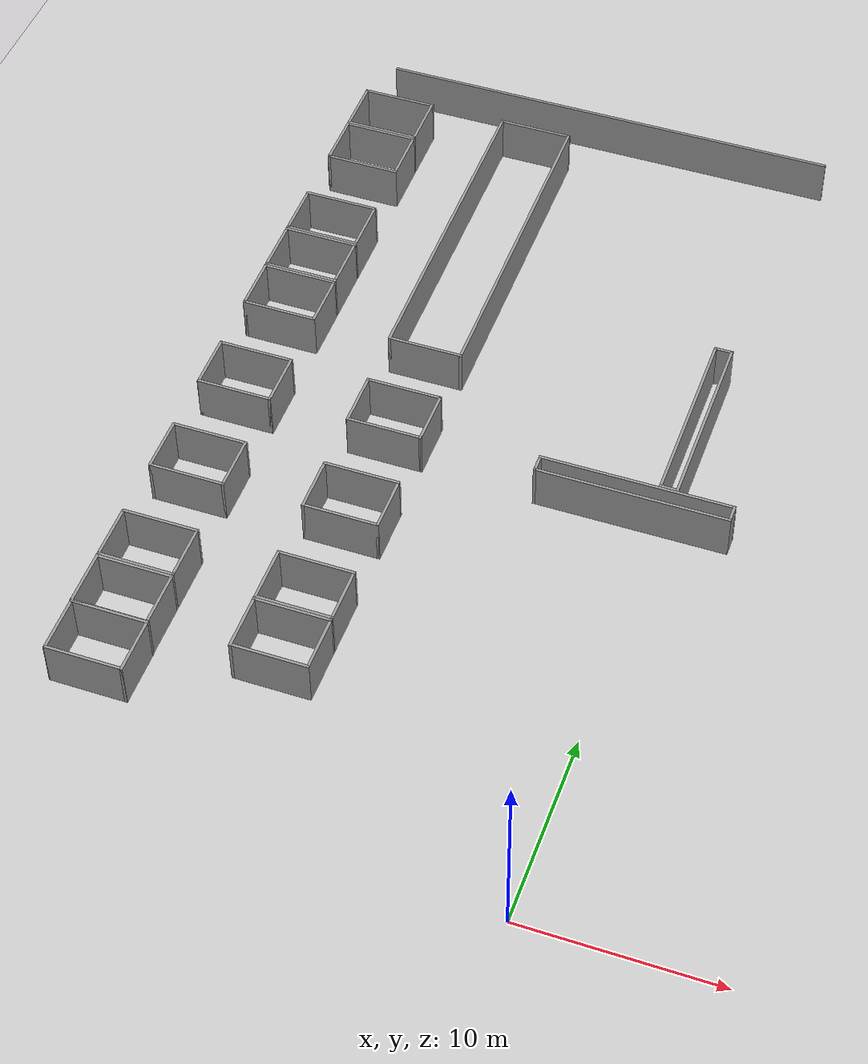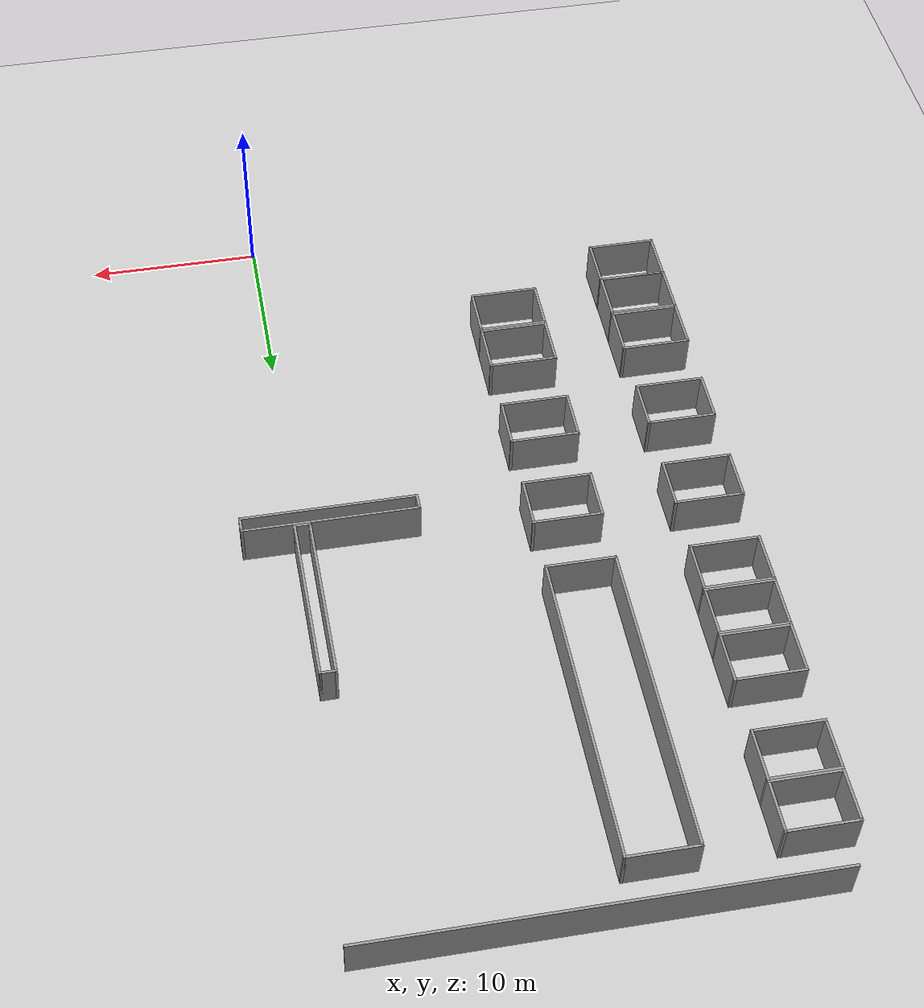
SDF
<sdf version="1.6">
 <world name="default">
  <model name="ground_plane">
   <static>1</static>
   <link name="link">
    <collision name="collision">
     <geometry><plane><normal>0 0 1</normal><size>105 105</size></plane></geometry>
     <surface>
      <contact><collide_bitmask>65535</collide_bitmask></contact>
      <friction><ode><mu>100</mu><mu2>50</mu2></ode></friction>
     </surface>
    </collision>
    <visual name="visual">
     <cast_shadows>0</cast_shadows>
     <geometry><plane><normal>0 0 1</normal><size>105 105</size></plane></geometry>
     <material>
      <script><uri>file://media/materials/scripts/gazebo.material</uri><name>Gazebo/Grey</name></script>
     </material>
    </visual>
   </link>
  </model>
  <model name="wall_25m_4">
   <pose>-10.9942 49.3463 0 0 -0 0</pose>
   <link name="Wall_28">
    <collision name="Wall_28_Collision">
     <geometry><box><size>25 0.15 2.5</size></box></geometry>
     <pose>0 0 1.25 0 -0 0</pose>
    </collision>
    <visual name="Wall_28_Visual">
     <pose>0 0 1.25 0 -0 0</pose>
     <geometry><box><size>25 0.15 2.5</size></box></geometry>
     <material>
      <script><uri>file://media/materials/scripts/gazebo.material</uri><name>Gazebo/Grey</name></script>
      <ambient>1 1 1 1</ambient>
     </material>
     <meta><layer>0</layer></meta>
    </visual>
   </link>
   <static>1</static>
  </model>
  <model name="base3x4_73">
   <pose>-22.4114 6.74221 0 0 -0 0</pose>
   <link name="Wall_18">
    <collision name="Wall_18_Collision">
     <geometry><box><size>3 0.15 2.5</size></box></geometry>
     <pose>0 0 1.25 0 -0 0</pose>
    </collision>
    <visual name="Wall_18_Visual">
     <pose>0 0 1.25 0 -0 0</pose>
     <geometry><box><size>3 0.15 2.5</size></box></geometry>
     <material>
      <script><uri>file://media/materials/scripts/gazebo.material</uri><name>Gazebo/Grey</name></script>
      <ambient>1 1 1 1</ambient>
     </material>
     <meta><layer>0</layer></meta>
    </visual>
    <pose>-1.925 -0 0 0 -0 -1.5708</pose>
   </link>
   <link name="Wall_19">
    <collision name="Wall_19_Collision">
     <geometry><box><size>4 0.15 2.5</size></box></geometry>
     <pose>0 0 1.25 0 -0 0</pose>
    </collision>
    <visual name="Wall_19_Visual">
     <pose>0 0 1.25 0 -0 0</pose>
     <geometry><box><size>4 0.15 2.5</size></box></geometry>
     <material>
      <script><uri>file://media/materials/scripts/gazebo.material</uri><name>Gazebo/Grey</name></script>
      <ambient>1 1 1 1</ambient>
     </material>
     <meta><layer>0</layer></meta>
    </visual>
    <pose>-0 -1.425 0 0 -0 0</pose>
   </link>
   <link name="Wall_20">
    <collision name="Wall_20_Collision">
     <geometry><box><size>3 0.15 2.5</size></box></geometry>
     <pose>0 0 1.25 0 -0 0</pose>
    </collision>
    <visual name="Wall_20_Visual">
     <pose>0 0 1.25 0 -0 0</pose>
     <geometry><box><size>3 0.15 2.5</size></box></geometry>
     <material>
      <script><uri>file://media/materials/scripts/gazebo.material</uri><name>Gazebo/Grey</name></script>
      <ambient>1 1 1 1</ambient>
     </material>
     <meta><layer>0</layer></meta>
    </visual>
    <pose>1.925 -0 0 0 -0 1.5708</pose>
   </link>
   <link name="Wall_21">
    <collision name="Wall_21_Collision">
     <geometry><box><size>4 0.15 2.5</size></box></geometry>
     <pose>0 0 1.25 0 -0 0</pose>
    </collision>
    <visual name="Wall_21_Visual">
     <pose>0 0 1.25 0 -0 0</pose>
     <geometry><box><size>4 0.15 2.5</size></box></geometry>
     <material>
      <script><uri>file://media/materials/scripts/gazebo.material</uri><name>Gazebo/Grey</name></script>
      <ambient>1 1 1 1</ambient>
     </material>
     <meta><layer>0</layer></meta>
    </visual>
    <pose>-0 1.425 0 0 -0 3.14159</pose>
   </link>
   <static>1</static>
  </model>
  <model name="base3x4_50">
   <pose>-22.4338 9.61846 0 0 -0 0</pose>
   <link name="Wall_18">
    <collision name="Wall_18_Collision">
     <geometry><box><size>3 0.15 2.5</size></box></geometry>
     <pose>0 0 1.25 0 -0 0</pose>
    </collision>
    <visual name="Wall_18_Visual">
     <pose>0 0 1.25 0 -0 0</pose>
     <geometry><box><size>3 0.15 2.5</size></box></geometry>
     <material>
      <script><uri>file://media/materials/scripts/gazebo.material</uri><name>Gazebo/Grey</name></script>
      <ambient>1 1 1 1</ambient>
     </material>
     <meta><layer>0</layer></meta>
    </visual>
    <pose>-1.925 -0 0 0 -0 -1.5708</pose>
   </link>
   <link name="Wall_19">
    <collision name="Wall_19_Collision">
     <geometry><box><size>4 0.15 2.5</size></box></geometry>
     <pose>0 0 1.25 0 -0 0</pose>
    </collision>
    <visual name="Wall_19_Visual">
     <pose>0 0 1.25 0 -0 0</pose>
     <geometry><box><size>4 0.15 2.5</size></box></geometry>
     <material>
      <script><uri>file://media/materials/scripts/gazebo.material</uri><name>Gazebo/Grey</name></script>
      <ambient>1 1 1 1</ambient>
     </material>
     <meta><layer>0</layer></meta>
    </visual>
    <pose>-0 -1.425 0 0 -0 0</pose>
   </link>
   <link name="Wall_20">
    <collision name="Wall_20_Collision">
     <geometry><box><size>3 0.15 2.5</size></box></geometry>
     <pose>0 0 1.25 0 -0 0</pose>
    </collision>
    <visual name="Wall_20_Visual">
     <pose>0 0 1.25 0 -0 0</pose>
     <geometry><box><size>3 0.15 2.5</size></box></geometry>
     <material>
      <script><uri>file://media/materials/scripts/gazebo.material</uri><name>Gazebo/Grey</name></script>
      <ambient>1 1 1 1</ambient>
     </material>
     <meta><layer>0</layer></meta>
    </visual>
    <pose>1.925 -0 0 0 -0 1.5708</pose>
   </link>
   <link name="Wall_21">
    <collision name="Wall_21_Collision">
     <geometry><box><size>4 0.15 2.5</size></box></geometry>
     <pose>0 0 1.25 0 -0 0</pose>
    </collision>
    <visual name="Wall_21_Visual">
     <pose>0 0 1.25 0 -0 0</pose>
     <geometry><box><size>4 0.15 2.5</size></box></geometry>
     <material>
      <script><uri>file://media/materials/scripts/gazebo.material</uri><name>Gazebo/Grey</name></script>
      <ambient>1 1 1 1</ambient>
     </material>
     <meta><layer>0</layer></meta>
    </visual>
    <pose>-0 1.425 0 0 -0 3.14159</pose>
   </link>
   <static>1</static>
  </model>
  <model name="base3x4_66">
   <pose>-14.4193 9.67951 0 0 -0 0</pose>
   <link name="Wall_18">
    <collision name="Wall_18_Collision">
     <geometry><box><size>3 0.15 2.5</size></box></geometry>
     <pose>0 0 1.25 0 -0 0</pose>
    </collision>
    <visual name="Wall_18_Visual">
     <pose>0 0 1.25 0 -0 0</pose>
     <geometry><box><size>3 0.15 2.5</size></box></geometry>
     <material>
      <script><uri>file://media/materials/scripts/gazebo.material</uri><name>Gazebo/Grey</name></script>
      <ambient>1 1 1 1</ambient>
     </material>
     <meta><layer>0</layer></meta>
    </visual>
    <pose>-1.925 -0 0 0 -0 -1.5708</pose>
   </link>
   <link name="Wall_19">
    <collision name="Wall_19_Collision">
     <geometry><box><size>4 0.15 2.5</size></box></geometry>
     <pose>0 0 1.25 0 -0 0</pose>
    </collision>
    <visual name="Wall_19_Visual">
     <pose>0 0 1.25 0 -0 0</pose>
     <geometry><box><size>4 0.15 2.5</size></box></geometry>
     <material>
      <script><uri>file://media/materials/scripts/gazebo.material</uri><name>Gazebo/Grey</name></script>
      <ambient>1 1 1 1</ambient>
     </material>
     <meta><layer>0</layer></meta>
    </visual>
    <pose>-0 -1.425 0 0 -0 0</pose>
   </link>
   <link name="Wall_20">
    <collision name="Wall_20_Collision">
     <geometry><box><size>3 0.15 2.5</size></box></geometry>
     <pose>0 0 1.25 0 -0 0</pose>
    </collision>
    <visual name="Wall_20_Visual">
     <pose>0 0 1.25 0 -0 0</pose>
     <geometry><box><size>3 0.15 2.5</size></box></geometry>
     <material>
      <script><uri>file://media/materials/scripts/gazebo.material</uri><name>Gazebo/Grey</name></script>
      <ambient>1 1 1 1</ambient>
     </material>
     <meta><layer>0</layer></meta>
    </visual>
    <pose>1.925 -0 0 0 -0 1.5708</pose>
   </link>
   <link name="Wall_21">
    <collision name="Wall_21_Collision">
     <geometry><box><size>4 0.15 2.5</size></box></geometry>
     <pose>0 0 1.25 0 -0 0</pose>
    </collision>
    <visual name="Wall_21_Visual">
     <pose>0 0 1.25 0 -0 0</pose>
     <geometry><box><size>4 0.15 2.5</size></box></geometry>
     <material>
      <script><uri>file://media/materials/scripts/gazebo.material</uri><name>Gazebo/Grey</name></script>
      <ambient>1 1 1 1</ambient>
     </material>
     <meta><layer>0</layer></meta>
    </visual>
    <pose>-0 1.425 0 0 -0 3.14159</pose>
   </link>
   <static>1</static>
  </model>
  <model name="base3x4_11">
   <pose>-14.4193 12.679 0 0 -0 0</pose>
   <link name="Wall_18">
    <collision name="Wall_18_Collision">
     <geometry><box><size>3 0.15 2.5</size></box></geometry>
     <pose>0 0 1.25 0 -0 0</pose>
    </collision>
    <visual name="Wall_18_Visual">
     <pose>0 0 1.25 0 -0 0</pose>
     <geometry><box><size>3 0.15 2.5</size></box></geometry>
     <material>
      <script><uri>file://media/materials/scripts/gazebo.material</uri><name>Gazebo/Grey</name></script>
      <ambient>1 1 1 1</ambient>
     </material>
     <meta><layer>0</layer></meta>
    </visual>
    <pose>-1.925 -0 0 0 -0 -1.5708</pose>
   </link>
   <link name="Wall_19">
    <collision name="Wall_19_Collision">
     <geometry><box><size>4 0.15 2.5</size></box></geometry>
     <pose>0 0 1.25 0 -0 0</pose>
    </collision>
    <visual name="Wall_19_Visual">
     <pose>0 0 1.25 0 -0 0</pose>
     <geometry><box><size>4 0.15 2.5</size></box></geometry>
     <material>
      <script><uri>file://media/materials/scripts/gazebo.material</uri><name>Gazebo/Grey</name></script>
      <ambient>1 1 1 1</ambient>
     </material>
     <meta><layer>0</layer></meta>
    </visual>
    <pose>-0 -1.425 0 0 -0 0</pose>
   </link>
   <link name="Wall_20">
    <collision name="Wall_20_Collision">
     <geometry><box><size>3 0.15 2.5</size></box></geometry>
     <pose>0 0 1.25 0 -0 0</pose>
    </collision>
    <visual name="Wall_20_Visual">
     <pose>0 0 1.25 0 -0 0</pose>
     <geometry><box><size>3 0.15 2.5</size></box></geometry>
     <material>
      <script><uri>file://media/materials/scripts/gazebo.material</uri><name>Gazebo/Grey</name></script>
      <ambient>1 1 1 1</ambient>
     </material>
     <meta><layer>0</layer></meta>
    </visual>
    <pose>1.925 -0 0 0 -0 1.5708</pose>
   </link>
   <link name="Wall_21">
    <collision name="Wall_21_Collision">
     <geometry><box><size>4 0.15 2.5</size></box></geometry>
     <pose>0 0 1.25 0 -0 0</pose>
    </collision>
    <visual name="Wall_21_Visual">
     <pose>0 0 1.25 0 -0 0</pose>
     <geometry><box><size>4 0.15 2.5</size></box></geometry>
     <material>
      <script><uri>file://media/materials/scripts/gazebo.material</uri><name>Gazebo/Grey</name></script>
      <ambient>1 1 1 1</ambient>
     </material>
     <meta><layer>0</layer></meta>
    </visual>
    <pose>-0 1.425 0 0 -0 3.14159</pose>
   </link>
   <static>1</static>
  </model>
  <model name="base3x4_16">
   <pose>-22.4359 12.6153 0 0 -0 0</pose>
   <link name="Wall_18">
    <collision name="Wall_18_Collision">
     <geometry><box><size>3 0.15 2.5</size></box></geometry>
     <pose>0 0 1.25 0 -0 0</pose>
    </collision>
    <visual name="Wall_18_Visual">
     <pose>0 0 1.25 0 -0 0</pose>
     <geometry><box><size>3 0.15 2.5</size></box></geometry>
     <material>
      <script><uri>file://media/materials/scripts/gazebo.material</uri><name>Gazebo/Grey</name></script>
      <ambient>1 1 1 1</ambient>
     </material>
     <meta><layer>0</layer></meta>
    </visual>
    <pose>-1.925 -0 0 0 -0 -1.5708</pose>
   </link>
   <link name="Wall_19">
    <collision name="Wall_19_Collision">
     <geometry><box><size>4 0.15 2.5</size></box></geometry>
     <pose>0 0 1.25 0 -0 0</pose>
    </collision>
    <visual name="Wall_19_Visual">
     <pose>0 0 1.25 0 -0 0</pose>
     <geometry><box><size>4 0.15 2.5</size></box></geometry>
     <material>
      <script><uri>file://media/materials/scripts/gazebo.material</uri><name>Gazebo/Grey</name></script>
      <ambient>1 1 1 1</ambient>
     </material>
     <meta><layer>0</layer></meta>
    </visual>
    <pose>-0 -1.425 0 0 -0 0</pose>
   </link>
   <link name="Wall_20">
    <collision name="Wall_20_Collision">
     <geometry><box><size>3 0.15 2.5</size></box></geometry>
     <pose>0 0 1.25 0 -0 0</pose>
    </collision>
    <visual name="Wall_20_Visual">
     <pose>0 0 1.25 0 -0 0</pose>
     <geometry><box><size>3 0.15 2.5</size></box></geometry>
     <material>
      <script><uri>file://media/materials/scripts/gazebo.material</uri><name>Gazebo/Grey</name></script>
      <ambient>1 1 1 1</ambient>
     </material>
     <meta><layer>0</layer></meta>
    </visual>
    <pose>1.925 -0 0 0 -0 1.5708</pose>
   </link>
   <link name="Wall_21">
    <collision name="Wall_21_Collision">
     <geometry><box><size>4 0.15 2.5</size></box></geometry>
     <pose>0 0 1.25 0 -0 0</pose>
    </collision>
    <visual name="Wall_21_Visual">
     <pose>0 0 1.25 0 -0 0</pose>
     <geometry><box><size>4 0.15 2.5</size></box></geometry>
     <material>
      <script><uri>file://media/materials/scripts/gazebo.material</uri><name>Gazebo/Grey</name></script>
      <ambient>1 1 1 1</ambient>
     </material>
     <meta><layer>0</layer></meta>
    </visual>
    <pose>-0 1.425 0 0 -0 3.14159</pose>
   </link>
   <static>1</static>
  </model>
  <model name="base3x4_77">
   <pose>-14.4153 18.6617 0 0 -0 0</pose>
   <link name="Wall_18">
    <collision name="Wall_18_Collision">
     <geometry><box><size>3 0.15 2.5</size></box></geometry>
     <pose>0 0 1.25 0 -0 0</pose>
    </collision>
    <visual name="Wall_18_Visual">
     <pose>0 0 1.25 0 -0 0</pose>
     <geometry><box><size>3 0.15 2.5</size></box></geometry>
     <material>
      <script><uri>file://media/materials/scripts/gazebo.material</uri><name>Gazebo/Grey</name></script>
      <ambient>1 1 1 1</ambient>
     </material>
     <meta><layer>0</layer></meta>
    </visual>
    <pose>-1.925 -0 0 0 -0 -1.5708</pose>
   </link>
   <link name="Wall_19">
    <collision name="Wall_19_Collision">
     <geometry><box><size>4 0.15 2.5</size></box></geometry>
     <pose>0 0 1.25 0 -0 0</pose>
    </collision>
    <visual name="Wall_19_Visual">
     <pose>0 0 1.25 0 -0 0</pose>
     <geometry><box><size>4 0.15 2.5</size></box></geometry>
     <material>
      <script><uri>file://media/materials/scripts/gazebo.material</uri><name>Gazebo/Grey</name></script>
      <ambient>1 1 1 1</ambient>
     </material>
     <meta><layer>0</layer></meta>
    </visual>
    <pose>-0 -1.425 0 0 -0 0</pose>
   </link>
   <link name="Wall_20">
    <collision name="Wall_20_Collision">
     <geometry><box><size>3 0.15 2.5</size></box></geometry>
     <pose>0 0 1.25 0 -0 0</pose>
    </collision>
    <visual name="Wall_20_Visual">
     <pose>0 0 1.25 0 -0 0</pose>
     <geometry><box><size>3 0.15 2.5</size></box></geometry>
     <material>
      <script><uri>file://media/materials/scripts/gazebo.material</uri><name>Gazebo/Grey</name></script>
      <ambient>1 1 1 1</ambient>
     </material>
     <meta><layer>0</layer></meta>
    </visual>
    <pose>1.925 -0 0 0 -0 1.5708</pose>
   </link>
   <link name="Wall_21">
    <collision name="Wall_21_Collision">
     <geometry><box><size>4 0.15 2.5</size></box></geometry>
     <pose>0 0 1.25 0 -0 0</pose>
    </collision>
    <visual name="Wall_21_Visual">
     <pose>0 0 1.25 0 -0 0</pose>
     <geometry><box><size>4 0.15 2.5</size></box></geometry>
     <material>
      <script><uri>file://media/materials/scripts/gazebo.material</uri><name>Gazebo/Grey</name></script>
      <ambient>1 1 1 1</ambient>
     </material>
     <meta><layer>0</layer></meta>
    </visual>
    <pose>-0 1.425 0 0 -0 3.14159</pose>
   </link>
   <static>1</static>
  </model>
  <model name="base3x4_82">
   <pose>-22.4351 18.5982 0 0 -0 0</pose>
   <link name="Wall_18">
    <collision name="Wall_18_Collision">
     <geometry><box><size>3 0.15 2.5</size></box></geometry>
     <pose>0 0 1.25 0 -0 0</pose>
    </collision>
    <visual name="Wall_18_Visual">
     <pose>0 0 1.25 0 -0 0</pose>
     <geometry><box><size>3 0.15 2.5</size></box></geometry>
     <material>
      <script><uri>file://media/materials/scripts/gazebo.material</uri><name>Gazebo/Grey</name></script>
      <ambient>1 1 1 1</ambient>
     </material>
     <meta><layer>0</layer></meta>
    </visual>
    <pose>-1.925 -0 0 0 -0 -1.5708</pose>
   </link>
   <link name="Wall_19">
    <collision name="Wall_19_Collision">
     <geometry><box><size>4 0.15 2.5</size></box></geometry>
     <pose>0 0 1.25 0 -0 0</pose>
    </collision>
    <visual name="Wall_19_Visual">
     <pose>0 0 1.25 0 -0 0</pose>
     <geometry><box><size>4 0.15 2.5</size></box></geometry>
     <material>
      <script><uri>file://media/materials/scripts/gazebo.material</uri><name>Gazebo/Grey</name></script>
      <ambient>1 1 1 1</ambient>
     </material>
     <meta><layer>0</layer></meta>
    </visual>
    <pose>-0 -1.425 0 0 -0 0</pose>
   </link>
   <link name="Wall_20">
    <collision name="Wall_20_Collision">
     <geometry><box><size>3 0.15 2.5</size></box></geometry>
     <pose>0 0 1.25 0 -0 0</pose>
    </collision>
    <visual name="Wall_20_Visual">
     <pose>0 0 1.25 0 -0 0</pose>
     <geometry><box><size>3 0.15 2.5</size></box></geometry>
     <material>
      <script><uri>file://media/materials/scripts/gazebo.material</uri><name>Gazebo/Grey</name></script>
      <ambient>1 1 1 1</ambient>
     </material>
     <meta><layer>0</layer></meta>
    </visual>
    <pose>1.925 -0 0 0 -0 1.5708</pose>
   </link>
   <link name="Wall_21">
    <collision name="Wall_21_Collision">
     <geometry><box><size>4 0.15 2.5</size></box></geometry>
     <pose>0 0 1.25 0 -0 0</pose>
    </collision>
    <visual name="Wall_21_Visual">
     <pose>0 0 1.25 0 -0 0</pose>
     <geometry><box><size>4 0.15 2.5</size></box></geometry>
     <material>
      <script><uri>file://media/materials/scripts/gazebo.material</uri><name>Gazebo/Grey</name></script>
      <ambient>1 1 1 1</ambient>
     </material>
     <meta><layer>0</layer></meta>
    </visual>
    <pose>-0 1.425 0 0 -0 3.14159</pose>
   </link>
   <static>1</static>
  </model>
  <model name="base18x4_4">
   <pose>-14.4191 38.0948 0 0 -0 0</pose>
   <link name="Wall_6">
    <collision name="Wall_6_Collision">
     <geometry><box><size>18 0.15 2.5</size></box></geometry>
     <pose>0 0 1.25 0 -0 0</pose>
    </collision>
    <visual name="Wall_6_Visual">
     <pose>0 0 1.25 0 -0 0</pose>
     <geometry><box><size>18 0.15 2.5</size></box></geometry>
     <material>
      <script><uri>file://media/materials/scripts/gazebo.material</uri><name>Gazebo/Grey</name></script>
      <ambient>1 1 1 1</ambient>
     </material>
     <meta><layer>0</layer></meta>
    </visual>
    <pose>-1.925 0 0 0 -0 -1.5708</pose>
   </link>
   <link name="Wall_7">
    <collision name="Wall_7_Collision">
     <geometry><box><size>4 0.15 2.5</size></box></geometry>
     <pose>0 0 1.25 0 -0 0</pose>
    </collision>
    <visual name="Wall_7_Visual">
     <pose>0 0 1.25 0 -0 0</pose>
     <geometry><box><size>4 0.15 2.5</size></box></geometry>
     <material>
      <script><uri>file://media/materials/scripts/gazebo.material</uri><name>Gazebo/Grey</name></script>
      <ambient>1 1 1 1</ambient>
     </material>
     <meta><layer>0</layer></meta>
    </visual>
    <pose>0 -8.925 0 0 -0 0</pose>
   </link>
   <link name="Wall_8">
    <collision name="Wall_8_Collision">
     <geometry><box><size>18 0.15 2.5</size></box></geometry>
     <pose>0 0 1.25 0 -0 0</pose>
    </collision>
    <visual name="Wall_8_Visual">
     <pose>0 0 1.25 0 -0 0</pose>
     <geometry><box><size>18 0.15 2.5</size></box></geometry>
     <material>
      <script><uri>file://media/materials/scripts/gazebo.material</uri><name>Gazebo/Grey</name></script>
      <ambient>1 1 1 1</ambient>
     </material>
     <meta><layer>0</layer></meta>
    </visual>
    <pose>1.925 0 0 0 -0 1.5708</pose>
   </link>
   <link name="Wall_9">
    <collision name="Wall_9_Collision">
     <geometry><box><size>4 0.15 2.5</size></box></geometry>
     <pose>0 0 1.25 0 -0 0</pose>
    </collision>
    <visual name="Wall_9_Visual">
     <pose>0 0 1.25 0 -0 0</pose>
     <geometry><box><size>4 0.15 2.5</size></box></geometry>
     <material>
      <script><uri>file://media/materials/scripts/gazebo.material</uri><name>Gazebo/Grey</name></script>
      <ambient>1 1 1 1</ambient>
     </material>
     <meta><layer>0</layer></meta>
    </visual>
    <pose>0 8.925 0 0 -0 3.14159</pose>
   </link>
   <static>1</static>
  </model>
  <model name="base3x4_57">
   <pose>-14.4138 24.637 0 0 -0 0</pose>
   <link name="Wall_18">
    <collision name="Wall_18_Collision">
     <geometry><box><size>3 0.15 2.5</size></box></geometry>
     <pose>0 0 1.25 0 -0 0</pose>
    </collision>
    <visual name="Wall_18_Visual">
     <pose>0 0 1.25 0 -0 0</pose>
     <geometry><box><size>3 0.15 2.5</size></box></geometry>
     <material>
      <script><uri>file://media/materials/scripts/gazebo.material</uri><name>Gazebo/Grey</name></script>
      <ambient>1 1 1 1</ambient>
     </material>
     <meta><layer>0</layer></meta>
    </visual>
    <pose>-1.925 -0 0 0 -0 -1.5708</pose>
   </link>
   <link name="Wall_19">
    <collision name="Wall_19_Collision">
     <geometry><box><size>4 0.15 2.5</size></box></geometry>
     <pose>0 0 1.25 0 -0 0</pose>
    </collision>
    <visual name="Wall_19_Visual">
     <pose>0 0 1.25 0 -0 0</pose>
     <geometry><box><size>4 0.15 2.5</size></box></geometry>
     <material>
      <script><uri>file://media/materials/scripts/gazebo.material</uri><name>Gazebo/Grey</name></script>
      <ambient>1 1 1 1</ambient>
     </material>
     <meta><layer>0</layer></meta>
    </visual>
    <pose>-0 -1.425 0 0 -0 0</pose>
   </link>
   <link name="Wall_20">
    <collision name="Wall_20_Collision">
     <geometry><box><size>3 0.15 2.5</size></box></geometry>
     <pose>0 0 1.25 0 -0 0</pose>
    </collision>
    <visual name="Wall_20_Visual">
     <pose>0 0 1.25 0 -0 0</pose>
     <geometry><box><size>3 0.15 2.5</size></box></geometry>
     <material>
      <script><uri>file://media/materials/scripts/gazebo.material</uri><name>Gazebo/Grey</name></script>
      <ambient>1 1 1 1</ambient>
     </material>
     <meta><layer>0</layer></meta>
    </visual>
    <pose>1.925 -0 0 0 -0 1.5708</pose>
   </link>
   <link name="Wall_21">
    <collision name="Wall_21_Collision">
     <geometry><box><size>4 0.15 2.5</size></box></geometry>
     <pose>0 0 1.25 0 -0 0</pose>
    </collision>
    <visual name="Wall_21_Visual">
     <pose>0 0 1.25 0 -0 0</pose>
     <geometry><box><size>4 0.15 2.5</size></box></geometry>
     <material>
      <script><uri>file://media/materials/scripts/gazebo.material</uri><name>Gazebo/Grey</name></script>
      <ambient>1 1 1 1</ambient>
     </material>
     <meta><layer>0</layer></meta>
    </visual>
    <pose>-0 1.425 0 0 -0 3.14159</pose>
   </link>
   <static>1</static>
  </model>
  <model name="base3x4_80">
   <pose>-22.4387 24.5873 0 0 -0 0</pose>
   <link name="Wall_18">
    <collision name="Wall_18_Collision">
     <geometry><box><size>3 0.15 2.5</size></box></geometry>
     <pose>0 0 1.25 0 -0 0</pose>
    </collision>
    <visual name="Wall_18_Visual">
     <pose>0 0 1.25 0 -0 0</pose>
     <geometry><box><size>3 0.15 2.5</size></box></geometry>
     <material>
      <script><uri>file://media/materials/scripts/gazebo.material</uri><name>Gazebo/Grey</name></script>
      <ambient>1 1 1 1</ambient>
     </material>
     <meta><layer>0</layer></meta>
    </visual>
    <pose>-1.925 -0 0 0 -0 -1.5708</pose>
   </link>
   <link name="Wall_19">
    <collision name="Wall_19_Collision">
     <geometry><box><size>4 0.15 2.5</size></box></geometry>
     <pose>0 0 1.25 0 -0 0</pose>
    </collision>
    <visual name="Wall_19_Visual">
     <pose>0 0 1.25 0 -0 0</pose>
     <geometry><box><size>4 0.15 2.5</size></box></geometry>
     <material>
      <script><uri>file://media/materials/scripts/gazebo.material</uri><name>Gazebo/Grey</name></script>
      <ambient>1 1 1 1</ambient>
     </material>
     <meta><layer>0</layer></meta>
    </visual>
    <pose>-0 -1.425 0 0 -0 0</pose>
   </link>
   <link name="Wall_20">
    <collision name="Wall_20_Collision">
     <geometry><box><size>3 0.15 2.5</size></box></geometry>
     <pose>0 0 1.25 0 -0 0</pose>
    </collision>
    <visual name="Wall_20_Visual">
     <pose>0 0 1.25 0 -0 0</pose>
     <geometry><box><size>3 0.15 2.5</size></box></geometry>
     <material>
      <script><uri>file://media/materials/scripts/gazebo.material</uri><name>Gazebo/Grey</name></script>
      <ambient>1 1 1 1</ambient>
     </material>
     <meta><layer>0</layer></meta>
    </visual>
    <pose>1.925 -0 0 0 -0 1.5708</pose>
   </link>
   <link name="Wall_21">
    <collision name="Wall_21_Collision">
     <geometry><box><size>4 0.15 2.5</size></box></geometry>
     <pose>0 0 1.25 0 -0 0</pose>
    </collision>
    <visual name="Wall_21_Visual">
     <pose>0 0 1.25 0 -0 0</pose>
     <geometry><box><size>4 0.15 2.5</size></box></geometry>
     <material>
      <script><uri>file://media/materials/scripts/gazebo.material</uri><name>Gazebo/Grey</name></script>
      <ambient>1 1 1 1</ambient>
     </material>
     <meta><layer>0</layer></meta>
    </visual>
    <pose>-0 1.425 0 0 -0 3.14159</pose>
   </link>
   <static>1</static>
  </model>
  <model name="base3x4_89">
   <pose>-22.4372 30.571 0 0 -0 0</pose>
   <link name="Wall_18">
    <collision name="Wall_18_Collision">
     <geometry><box><size>3 0.15 2.5</size></box></geometry>
     <pose>0 0 1.25 0 -0 0</pose>
    </collision>
    <visual name="Wall_18_Visual">
     <pose>0 0 1.25 0 -0 0</pose>
     <geometry><box><size>3 0.15 2.5</size></box></geometry>
     <material>
      <script><uri>file://media/materials/scripts/gazebo.material</uri><name>Gazebo/Grey</name></script>
      <ambient>1 1 1 1</ambient>
     </material>
     <meta><layer>0</layer></meta>
    </visual>
    <pose>-1.925 -0 0 0 -0 -1.5708</pose>
   </link>
   <link name="Wall_19">
    <collision name="Wall_19_Collision">
     <geometry><box><size>4 0.15 2.5</size></box></geometry>
     <pose>0 0 1.25 0 -0 0</pose>
    </collision>
    <visual name="Wall_19_Visual">
     <pose>0 0 1.25 0 -0 0</pose>
     <geometry><box><size>4 0.15 2.5</size></box></geometry>
     <material>
      <script><uri>file://media/materials/scripts/gazebo.material</uri><name>Gazebo/Grey</name></script>
      <ambient>1 1 1 1</ambient>
     </material>
     <meta><layer>0</layer></meta>
    </visual>
    <pose>-0 -1.425 0 0 -0 0</pose>
   </link>
   <link name="Wall_20">
    <collision name="Wall_20_Collision">
     <geometry><box><size>3 0.15 2.5</size></box></geometry>
     <pose>0 0 1.25 0 -0 0</pose>
    </collision>
    <visual name="Wall_20_Visual">
     <pose>0 0 1.25 0 -0 0</pose>
     <geometry><box><size>3 0.15 2.5</size></box></geometry>
     <material>
      <script><uri>file://media/materials/scripts/gazebo.material</uri><name>Gazebo/Grey</name></script>
      <ambient>1 1 1 1</ambient>
     </material>
     <meta><layer>0</layer></meta>
    </visual>
    <pose>1.925 -0 0 0 -0 1.5708</pose>
   </link>
   <link name="Wall_21">
    <collision name="Wall_21_Collision">
     <geometry><box><size>4 0.15 2.5</size></box></geometry>
     <pose>0 0 1.25 0 -0 0</pose>
    </collision>
    <visual name="Wall_21_Visual">
     <pose>0 0 1.25 0 -0 0</pose>
     <geometry><box><size>4 0.15 2.5</size></box></geometry>
     <material>
      <script><uri>file://media/materials/scripts/gazebo.material</uri><name>Gazebo/Grey</name></script>
      <ambient>1 1 1 1</ambient>
     </material>
     <meta><layer>0</layer></meta>
    </visual>
    <pose>-0 1.425 0 0 -0 3.14159</pose>
   </link>
   <static>1</static>
  </model>
  <model name="base3x4_90">
   <pose>-22.4383 33.565 0 0 -0 0</pose>
   <link name="Wall_18">
    <collision name="Wall_18_Collision">
     <geometry><box><size>3 0.15 2.5</size></box></geometry>
     <pose>0 0 1.25 0 -0 0</pose>
    </collision>
    <visual name="Wall_18_Visual">
     <pose>0 0 1.25 0 -0 0</pose>
     <geometry><box><size>3 0.15 2.5</size></box></geometry>
     <material>
      <script><uri>file://media/materials/scripts/gazebo.material</uri><name>Gazebo/Grey</name></script>
      <ambient>1 1 1 1</ambient>
     </material>
     <meta><layer>0</layer></meta>
    </visual>
    <pose>-1.925 -0 0 0 -0 -1.5708</pose>
   </link>
   <link name="Wall_19">
    <collision name="Wall_19_Collision">
     <geometry><box><size>4 0.15 2.5</size></box></geometry>
     <pose>0 0 1.25 0 -0 0</pose>
    </collision>
    <visual name="Wall_19_Visual">
     <pose>0 0 1.25 0 -0 0</pose>
     <geometry><box><size>4 0.15 2.5</size></box></geometry>
     <material>
      <script><uri>file://media/materials/scripts/gazebo.material</uri><name>Gazebo/Grey</name></script>
      <ambient>1 1 1 1</ambient>
     </material>
     <meta><layer>0</layer></meta>
    </visual>
    <pose>-0 -1.425 0 0 -0 0</pose>
   </link>
   <link name="Wall_20">
    <collision name="Wall_20_Collision">
     <geometry><box><size>3 0.15 2.5</size></box></geometry>
     <pose>0 0 1.25 0 -0 0</pose>
    </collision>
    <visual name="Wall_20_Visual">
     <pose>0 0 1.25 0 -0 0</pose>
     <geometry><box><size>3 0.15 2.5</size></box></geometry>
     <material>
      <script><uri>file://media/materials/scripts/gazebo.material</uri><name>Gazebo/Grey</name></script>
      <ambient>1 1 1 1</ambient>
     </material>
     <meta><layer>0</layer></meta>
    </visual>
    <pose>1.925 -0 0 0 -0 1.5708</pose>
   </link>
   <link name="Wall_21">
    <collision name="Wall_21_Collision">
     <geometry><box><size>4 0.15 2.5</size></box></geometry>
     <pose>0 0 1.25 0 -0 0</pose>
    </collision>
    <visual name="Wall_21_Visual">
     <pose>0 0 1.25 0 -0 0</pose>
     <geometry><box><size>4 0.15 2.5</size></box></geometry>
     <material>
      <script><uri>file://media/materials/scripts/gazebo.material</uri><name>Gazebo/Grey</name></script>
      <ambient>1 1 1 1</ambient>
     </material>
     <meta><layer>0</layer></meta>
    </visual>
    <pose>-0 1.425 0 0 -0 3.14159</pose>
   </link>
   <static>1</static>
  </model>
  <model name="base3x4_91">
   <pose>-22.4355 36.5596 0 0 -0 0</pose>
   <link name="Wall_18">
    <collision name="Wall_18_Collision">
     <geometry><box><size>3 0.15 2.5</size></box></geometry>
     <pose>0 0 1.25 0 -0 0</pose>
    </collision>
    <visual name="Wall_18_Visual">
     <pose>0 0 1.25 0 -0 0</pose>
     <geometry><box><size>3 0.15 2.5</size></box></geometry>
     <material>
      <script><uri>file://media/materials/scripts/gazebo.material</uri><name>Gazebo/Grey</name></script>
      <ambient>1 1 1 1</ambient>
     </material>
     <meta><layer>0</layer></meta>
    </visual>
    <pose>-1.925 -0 0 0 -0 -1.5708</pose>
   </link>
   <link name="Wall_19">
    <collision name="Wall_19_Collision">
     <geometry><box><size>4 0.15 2.5</size></box></geometry>
     <pose>0 0 1.25 0 -0 0</pose>
    </collision>
    <visual name="Wall_19_Visual">
     <pose>0 0 1.25 0 -0 0</pose>
     <geometry><box><size>4 0.15 2.5</size></box></geometry>
     <material>
      <script><uri>file://media/materials/scripts/gazebo.material</uri><name>Gazebo/Grey</name></script>
      <ambient>1 1 1 1</ambient>
     </material>
     <meta><layer>0</layer></meta>
    </visual>
    <pose>-0 -1.425 0 0 -0 0</pose>
   </link>
   <link name="Wall_20">
    <collision name="Wall_20_Collision">
     <geometry><box><size>3 0.15 2.5</size></box></geometry>
     <pose>0 0 1.25 0 -0 0</pose>
    </collision>
    <visual name="Wall_20_Visual">
     <pose>0 0 1.25 0 -0 0</pose>
     <geometry><box><size>3 0.15 2.5</size></box></geometry>
     <material>
      <script><uri>file://media/materials/scripts/gazebo.material</uri><name>Gazebo/Grey</name></script>
      <ambient>1 1 1 1</ambient>
     </material>
     <meta><layer>0</layer></meta>
    </visual>
    <pose>1.925 -0 0 0 -0 1.5708</pose>
   </link>
   <link name="Wall_21">
    <collision name="Wall_21_Collision">
     <geometry><box><size>4 0.15 2.5</size></box></geometry>
     <pose>0 0 1.25 0 -0 0</pose>
    </collision>
    <visual name="Wall_21_Visual">
     <pose>0 0 1.25 0 -0 0</pose>
     <geometry><box><size>4 0.15 2.5</size></box></geometry>
     <material>
      <script><uri>file://media/materials/scripts/gazebo.material</uri><name>Gazebo/Grey</name></script>
      <ambient>1 1 1 1</ambient>
     </material>
     <meta><layer>0</layer></meta>
    </visual>
    <pose>-0 1.425 0 0 -0 3.14159</pose>
   </link>
   <static>1</static>
  </model>
  <model name="base3x4_94">
   <pose>-22.4306 42.5564 0 0 -0 0</pose>
   <link name="Wall_18">
    <collision name="Wall_18_Collision">
     <geometry><box><size>3 0.15 2.5</size></box></geometry>
     <pose>0 0 1.25 0 -0 0</pose>
    </collision>
    <visual name="Wall_18_Visual">
     <pose>0 0 1.25 0 -0 0</pose>
     <geometry><box><size>3 0.15 2.5</size></box></geometry>
     <material>
      <script><uri>file://media/materials/scripts/gazebo.material</uri><name>Gazebo/Grey</name></script>
      <ambient>1 1 1 1</ambient>
     </material>
     <meta><layer>0</layer></meta>
    </visual>
    <pose>-1.925 -0 0 0 -0 -1.5708</pose>
   </link>
   <link name="Wall_19">
    <collision name="Wall_19_Collision">
     <geometry><box><size>4 0.15 2.5</size></box></geometry>
     <pose>0 0 1.25 0 -0 0</pose>
    </collision>
    <visual name="Wall_19_Visual">
     <pose>0 0 1.25 0 -0 0</pose>
     <geometry><box><size>4 0.15 2.5</size></box></geometry>
     <material>
      <script><uri>file://media/materials/scripts/gazebo.material</uri><name>Gazebo/Grey</name></script>
      <ambient>1 1 1 1</ambient>
     </material>
     <meta><layer>0</layer></meta>
    </visual>
    <pose>-0 -1.425 0 0 -0 0</pose>
   </link>
   <link name="Wall_20">
    <collision name="Wall_20_Collision">
     <geometry><box><size>3 0.15 2.5</size></box></geometry>
     <pose>0 0 1.25 0 -0 0</pose>
    </collision>
    <visual name="Wall_20_Visual">
     <pose>0 0 1.25 0 -0 0</pose>
     <geometry><box><size>3 0.15 2.5</size></box></geometry>
     <material>
      <script><uri>file://media/materials/scripts/gazebo.material</uri><name>Gazebo/Grey</name></script>
      <ambient>1 1 1 1</ambient>
     </material>
     <meta><layer>0</layer></meta>
    </visual>
    <pose>1.925 -0 0 0 -0 1.5708</pose>
   </link>
   <link name="Wall_21">
    <collision name="Wall_21_Collision">
     <geometry><box><size>4 0.15 2.5</size></box></geometry>
     <pose>0 0 1.25 0 -0 0</pose>
    </collision>
    <visual name="Wall_21_Visual">
     <pose>0 0 1.25 0 -0 0</pose>
     <geometry><box><size>4 0.15 2.5</size></box></geometry>
     <material>
      <script><uri>file://media/materials/scripts/gazebo.material</uri><name>Gazebo/Grey</name></script>
      <ambient>1 1 1 1</ambient>
     </material>
     <meta><layer>0</layer></meta>
    </visual>
    <pose>-0 1.425 0 0 -0 3.14159</pose>
   </link>
   <static>1</static>
  </model>
  <model name="base3x4_95">
   <pose>-22.4308 45.5533 0 0 -0 0</pose>
   <link name="Wall_18">
    <collision name="Wall_18_Collision">
     <geometry><box><size>3 0.15 2.5</size></box></geometry>
     <pose>0 0 1.25 0 -0 0</pose>
    </collision>
    <visual name="Wall_18_Visual">
     <pose>0 0 1.25 0 -0 0</pose>
     <geometry><box><size>3 0.15 2.5</size></box></geometry>
     <material>
      <script><uri>file://media/materials/scripts/gazebo.material</uri><name>Gazebo/Grey</name></script>
      <ambient>1 1 1 1</ambient>
     </material>
     <meta><layer>0</layer></meta>
    </visual>
    <pose>-1.925 -0 0 0 -0 -1.5708</pose>
   </link>
   <link name="Wall_19">
    <collision name="Wall_19_Collision">
     <geometry><box><size>4 0.15 2.5</size></box></geometry>
     <pose>0 0 1.25 0 -0 0</pose>
    </collision>
    <visual name="Wall_19_Visual">
     <pose>0 0 1.25 0 -0 0</pose>
     <geometry><box><size>4 0.15 2.5</size></box></geometry>
     <material>
      <script><uri>file://media/materials/scripts/gazebo.material</uri><name>Gazebo/Grey</name></script>
      <ambient>1 1 1 1</ambient>
     </material>
     <meta><layer>0</layer></meta>
    </visual>
    <pose>-0 -1.425 0 0 -0 0</pose>
   </link>
   <link name="Wall_20">
    <collision name="Wall_20_Collision">
     <geometry><box><size>3 0.15 2.5</size></box></geometry>
     <pose>0 0 1.25 0 -0 0</pose>
    </collision>
    <visual name="Wall_20_Visual">
     <pose>0 0 1.25 0 -0 0</pose>
     <geometry><box><size>3 0.15 2.5</size></box></geometry>
     <material>
      <script><uri>file://media/materials/scripts/gazebo.material</uri><name>Gazebo/Grey</name></script>
      <ambient>1 1 1 1</ambient>
     </material>
     <meta><layer>0</layer></meta>
    </visual>
    <pose>1.925 -0 0 0 -0 1.5708</pose>
   </link>
   <link name="Wall_21">
    <collision name="Wall_21_Collision">
     <geometry><box><size>4 0.15 2.5</size></box></geometry>
     <pose>0 0 1.25 0 -0 0</pose>
    </collision>
    <visual name="Wall_21_Visual">
     <pose>0 0 1.25 0 -0 0</pose>
     <geometry><box><size>4 0.15 2.5</size></box></geometry>
     <material>
      <script><uri>file://media/materials/scripts/gazebo.material</uri><name>Gazebo/Grey</name></script>
      <ambient>1 1 1 1</ambient>
     </material>
     <meta><layer>0</layer></meta>
    </visual>
    <pose>-0 1.425 0 0 -0 3.14159</pose>
   </link>
   <static>1</static>
  </model>
  <model name="base1x10_3">
   <pose>-1.58181 23.5324 0 0 -0 0</pose>
   <link name="Wall_0">
    <collision name="Wall_0_Collision">
     <geometry><box><size>1 0.15 2.5</size></box></geometry>
     <pose>0 0 1.25 0 -0 0</pose>
    </collision>
    <visual name="Wall_0_Visual">
     <pose>0 0 1.25 0 -0 0</pose>
     <geometry><box><size>1 0.15 2.5</size></box></geometry>
     <material>
      <script><uri>file://media/materials/scripts/gazebo.material</uri><name>Gazebo/Grey</name></script>
      <ambient>1 1 1 1</ambient>
     </material>
     <meta><layer>0</layer></meta>
    </visual>
    <pose>-4.925 -0 0 0 -0 -1.5708</pose>
   </link>
   <link name="Wall_1">
    <collision name="Wall_1_Collision">
     <geometry><box><size>10 0.15 2.5</size></box></geometry>
     <pose>0 0 1.25 0 -0 0</pose>
    </collision>
    <visual name="Wall_1_Visual">
     <pose>0 0 1.25 0 -0 0</pose>
     <geometry><box><size>10 0.15 2.5</size></box></geometry>
     <material>
      <script><uri>file://media/materials/scripts/gazebo.material</uri><name>Gazebo/Grey</name></script>
      <ambient>1 1 1 1</ambient>
     </material>
     <meta><layer>0</layer></meta>
    </visual>
    <pose>0 -0.425 0 0 -0 0</pose>
   </link>
   <link name="Wall_2">
    <collision name="Wall_2_Collision">
     <geometry><box><size>1 0.15 2.5</size></box></geometry>
     <pose>0 0 1.25 0 -0 0</pose>
    </collision>
    <visual name="Wall_2_Visual">
     <pose>0 0 1.25 0 -0 0</pose>
     <geometry><box><size>1 0.15 2.5</size></box></geometry>
     <material>
      <script><uri>file://media/materials/scripts/gazebo.material</uri><name>Gazebo/Grey</name></script>
      <ambient>1 1 1 1</ambient>
     </material>
     <meta><layer>0</layer></meta>
    </visual>
    <pose>4.925 -0 0 0 -0 1.5708</pose>
   </link>
   <link name="Wall_3">
    <collision name="Wall_3_Collision">
     <geometry><box><size>10 0.15 2.5</size></box></geometry>
     <pose>0 0 1.25 0 -0 0</pose>
    </collision>
    <visual name="Wall_3_Visual">
     <pose>0 0 1.25 0 -0 0</pose>
     <geometry><box><size>10 0.15 2.5</size></box></geometry>
     <material>
      <script><uri>file://media/materials/scripts/gazebo.material</uri><name>Gazebo/Grey</name></script>
      <ambient>1 1 1 1</ambient>
     </material>
     <meta><layer>0</layer></meta>
    </visual>
    <pose>0 0.425 0 0 -0 3.14159</pose>
   </link>
   <static>1</static>
  </model>
  <model name="base10x1_5">
   <pose>0.019456 29.0297 0 0 -0 0</pose>
   <link name="Wall_15">
    <collision name="Wall_15_Collision">
     <geometry><box><size>10 0.15 2.5</size></box></geometry>
     <pose>0 0 1.25 0 -0 0</pose>
    </collision>
    <visual name="Wall_15_Visual">
     <pose>0 0 1.25 0 -0 0</pose>
     <geometry><box><size>10 0.15 2.5</size></box></geometry>
     <material>
      <script><uri>file://media/materials/scripts/gazebo.material</uri><name>Gazebo/Grey</name></script>
      <ambient>1 1 1 1</ambient>
     </material>
     <meta><layer>0</layer></meta>
    </visual>
    <pose>-0.425 0 0 0 -0 1.5708</pose>
   </link>
   <link name="Wall_16">
    <collision name="Wall_16_Collision">
     <geometry><box><size>1 0.15 2.5</size></box></geometry>
     <pose>0 0 1.25 0 -0 0</pose>
    </collision>
    <visual name="Wall_16_Visual">
     <pose>0 0 1.25 0 -0 0</pose>
     <geometry><box><size>1 0.15 2.5</size></box></geometry>
     <material>
      <script><uri>file://media/materials/scripts/gazebo.material</uri><name>Gazebo/Grey</name></script>
      <ambient>1 1 1 1</ambient>
     </material>
     <meta><layer>0</layer></meta>
    </visual>
    <pose>0 4.925 0 0 -0 0</pose>
   </link>
   <link name="Wall_17">
    <collision name="Wall_17_Collision">
     <geometry><box><size>10 0.15 2.5</size></box></geometry>
     <pose>0 0 1.25 0 -0 0</pose>
    </collision>
    <visual name="Wall_17_Visual">
     <pose>0 0 1.25 0 -0 0</pose>
     <geometry><box><size>10 0.15 2.5</size></box></geometry>
     <material>
      <script><uri>file://media/materials/scripts/gazebo.material</uri><name>Gazebo/Grey</name></script>
      <ambient>1 1 1 1</ambient>
     </material>
     <meta><layer>0</layer></meta>
    </visual>
    <pose>0.425 0 0 0 -0 -1.5708</pose>
   </link>
   <link name="Wall_18">
    <collision name="Wall_18_Collision">
     <geometry><box><size>1 0.15 2.5</size></box></geometry>
     <pose>0 0 1.25 0 -0 0</pose>
    </collision>
    <visual name="Wall_18_Visual">
     <pose>0 0 1.25 0 -0 0</pose>
     <geometry><box><size>1 0.15 2.5</size></box></geometry>
     <material>
      <script><uri>file://media/materials/scripts/gazebo.material</uri><name>Gazebo/Grey</name></script>
      <ambient>1 1 1 1</ambient>
     </material>
     <meta><layer>0</layer></meta>
    </visual>
    <pose>0 -4.925 0 0 -0 3.14159</pose>
   </link>
   <static>1</static>
  </model>
 </world>
</sdf>
